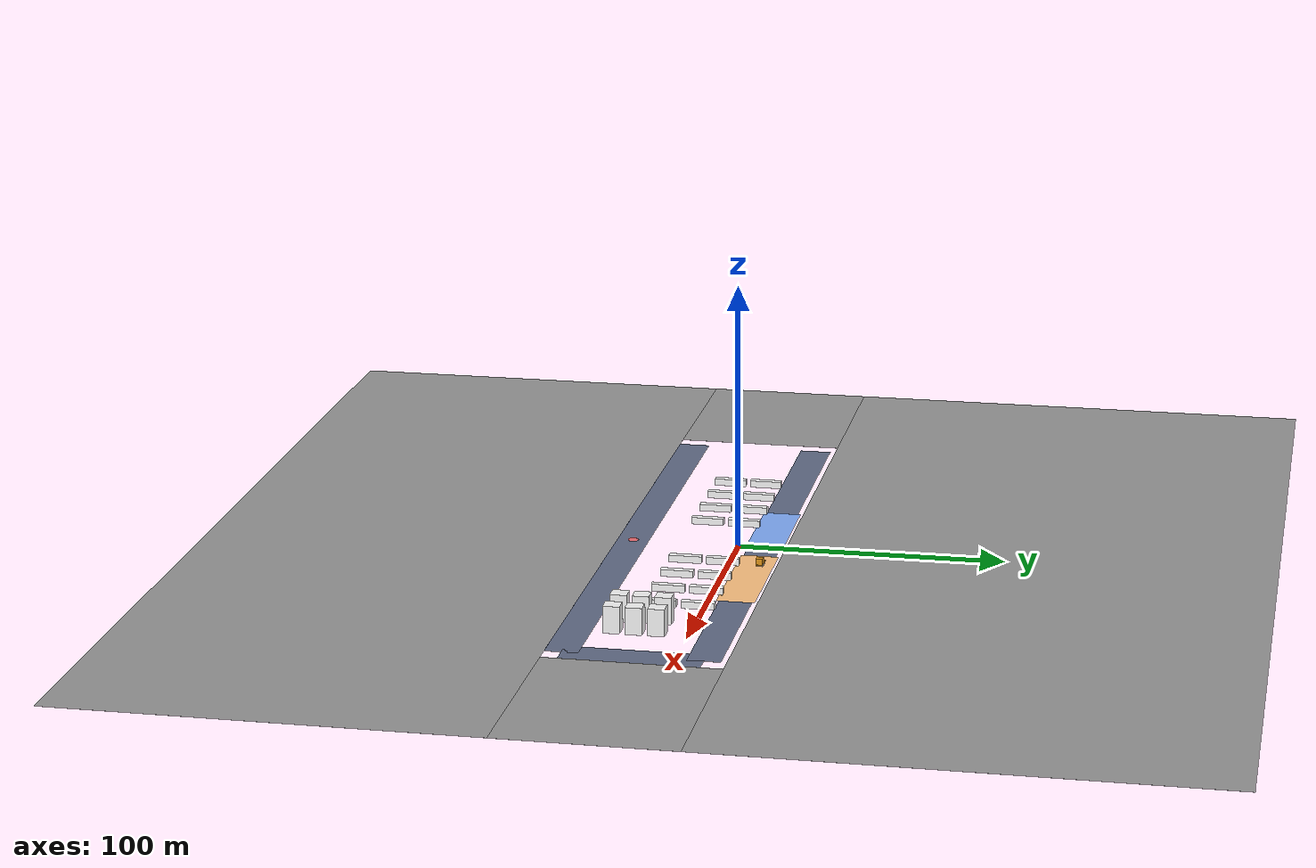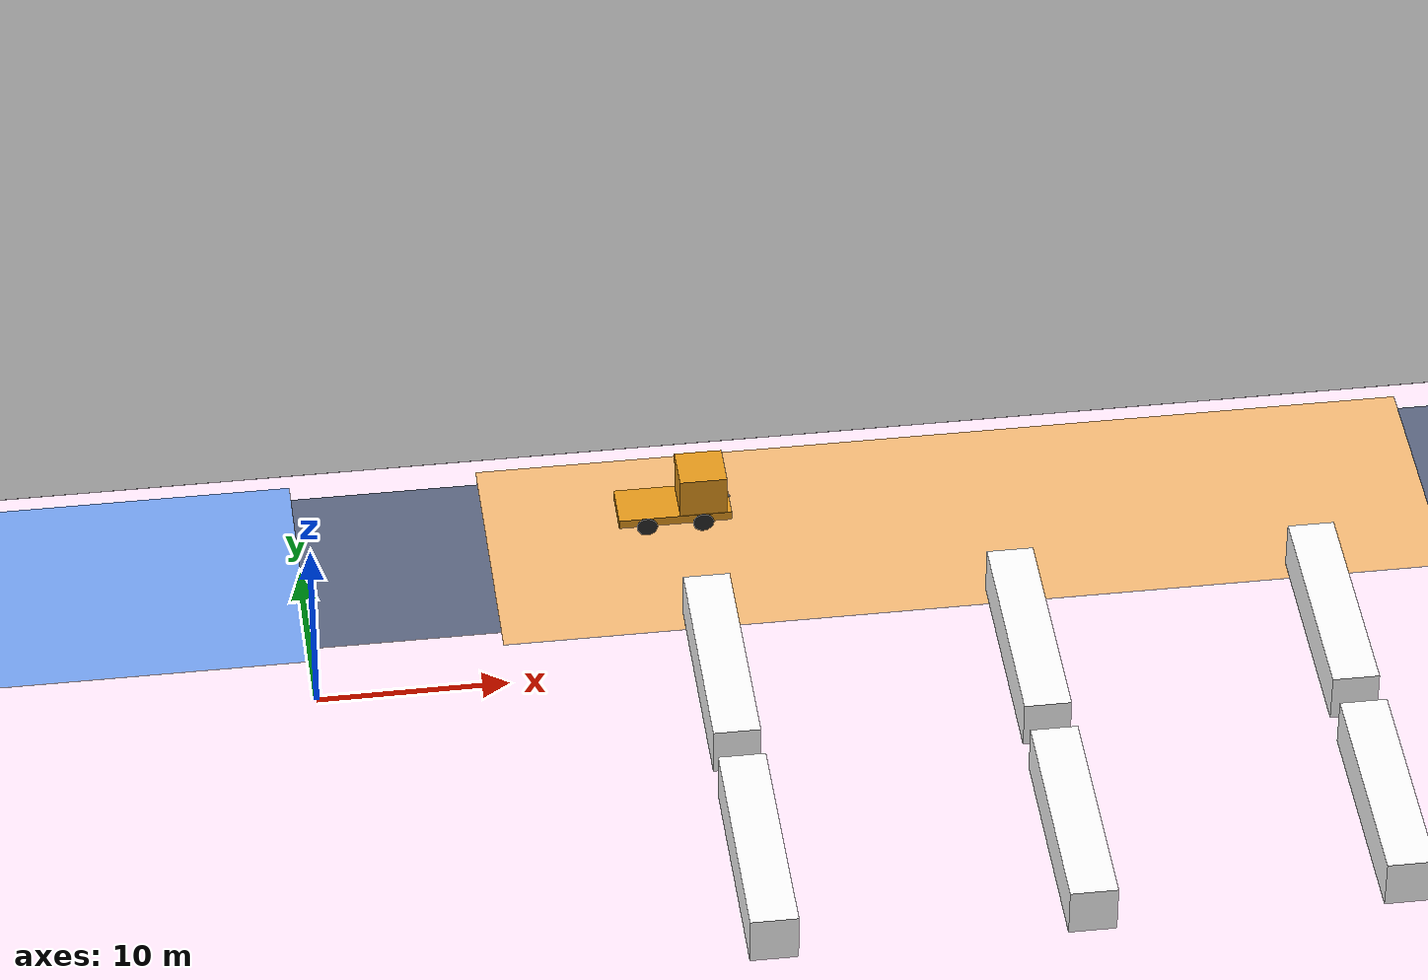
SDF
<sdf version="1.8">
 <world name="demo">
  <physics name="default_physics" type="ode">
   <max_step_size>0.001</max_step_size>
   <real_time_update_rate>1000</real_time_update_rate>
   <ode>
    <solver><type>quick</type><iters>50</iters><sor>1.3</sor></solver>
    <constraints>
     <cfm>0.0</cfm>
     <erp>0.2</erp>
     <contact_max_correcting_vel>10.0</contact_max_correcting_vel>
     <contact_surface_layer>0.001</contact_surface_layer>
    </constraints>
   </ode>
  </physics>
  <plugin filename="ignition-gazebo-physics-system" name="ignition::gazebo::systems::Physics"/>
  <plugin filename="ignition-gazebo-sensors-system" name="ignition::gazebo::systems::Sensors">
   <render_engine>ogre2</render_engine>
  </plugin>
  <plugin filename="ignition-gazebo-scene-broadcaster-system" name="ignition::gazebo::systems::SceneBroadcaster"/>
  <plugin filename="ignition-gazebo-user-commands-system" name="ignition::gazebo::systems::UserCommands"/>
  <light name="sun" type="directional">
   <pose>0 0 10 0 0 0</pose>
   <diffuse>0.8 0.8 0.8 1</diffuse>
   <specular>0.2 0.2 0.2 1</specular>
   <attenuation>
    <range>1000</range>
    <constant>0.9</constant>
    <linear>0.01</linear>
    <quadratic>0.001</quadratic>
   </attenuation>
   <direction>-0.5 0.1 -0.9</direction>
  </light>
  <model name="ground_plane">
   <static>true</static>
   <link name="link">
    <collision name="top_strip_collision">
     <pose>0 109 -0.1 0 0 0</pose>
     <geometry><box><size>400 182 0.2</size></box></geometry>
     <surface>
      <friction><ode><mu>1.0</mu><mu2>1.0</mu2></ode></friction>
      <contact><ode><kp>1e6</kp><kd>100</kd><max_vel>0.1</max_vel><min_depth>0.001</min_depth></ode></contact>
     </surface>
    </collision>
    <collision name="bottom_strip_collision">
     <pose>0 -123 -0.1 0 0 0</pose>
     <geometry><box><size>400 154 0.2</size></box></geometry>
     <surface>
      <friction><ode><mu>1.0</mu><mu2>1.0</mu2></ode></friction>
      <contact><ode><kp>1e6</kp><kd>100</kd><max_vel>0.1</max_vel><min_depth>0.001</min_depth></ode></contact>
     </surface>
    </collision>
    <collision name="left_strip_collision">
     <pose>-163 -14 -0.1 0 0 0</pose>
     <geometry><box><size>74 64 0.2</size></box></geometry>
     <surface>
      <friction><ode><mu>1.0</mu><mu2>1.0</mu2></ode></friction>
      <contact><ode><kp>1e6</kp><kd>100</kd><max_vel>0.1</max_vel><min_depth>0.001</min_depth></ode></contact>
     </surface>
    </collision>
    <collision name="right_strip_collision">
     <pose>163 -14 -0.1 0 0 0</pose>
     <geometry><box><size>74 64 0.2</size></box></geometry>
     <surface>
      <friction><ode><mu>1.0</mu><mu2>1.0</mu2></ode></friction>
      <contact><ode><kp>1e6</kp><kd>100</kd><max_vel>0.1</max_vel><min_depth>0.001</min_depth></ode></contact>
     </surface>
    </collision>
    <visual name="top_strip_visual">
     <pose>0 109 0 0 0 0</pose>
     <geometry><box><size>400 182 0.01</size></box></geometry>
     <material>
      <ambient>0.50 0.50 0.50 1</ambient>
      <diffuse>0.60 0.60 0.60 1</diffuse>
      <specular>0.40 0.40 0.40 1</specular>
     </material>
    </visual>
    <visual name="bottom_strip_visual">
     <pose>0 -123 0 0 0 0</pose>
     <geometry><box><size>400 154 0.01</size></box></geometry>
     <material>
      <ambient>0.50 0.50 0.50 1</ambient>
      <diffuse>0.60 0.60 0.60 1</diffuse>
      <specular>0.40 0.40 0.40 1</specular>
     </material>
    </visual>
    <visual name="left_strip_visual">
     <pose>-163 -14 0 0 0 0</pose>
     <geometry><box><size>74 64 0.01</size></box></geometry>
     <material>
      <ambient>0.50 0.50 0.50 1</ambient>
      <diffuse>0.60 0.60 0.60 1</diffuse>
      <specular>0.40 0.40 0.40 1</specular>
     </material>
    </visual>
    <visual name="right_strip_visual">
     <pose>163 -14 0 0 0 0</pose>
     <geometry><box><size>74 64 0.01</size></box></geometry>
     <material>
      <ambient>0.50 0.50 0.50 1</ambient>
      <diffuse>0.60 0.60 0.60 1</diffuse>
      <specular>0.40 0.40 0.40 1</specular>
     </material>
    </visual>
   </link>
  </model>
  <model name="main_test_corridor_overlay">
   <static>true</static>
   <link name="link">
    <visual name="visual">
     <pose>0 10 0.005 0 0 0</pose>
     <geometry><box><size>240 12 0.01</size></box></geometry>
     <material><ambient>0.10 0.18 0.26 0.70</ambient><diffuse>0.12 0.22 0.34 0.70</diffuse></material>
    </visual>
   </link>
  </model>
  <model name="secondary_test_corridor_overlay">
   <static>true</static>
   <link name="link">
    <visual name="visual">
     <pose>0 -40 0.005 0 0 0</pose>
     <geometry><box><size>240 12 0.01</size></box></geometry>
     <material><ambient>0.10 0.18 0.26 0.70</ambient><diffuse>0.12 0.22 0.34 0.70</diffuse></material>
    </visual>
   </link>
  </model>
  <model name="connector_test_corridor_overlay">
   <static>true</static>
   <link name="link">
    <visual name="vertical_leg">
     <pose>120 -15 0.005 0 0 0</pose>
     <geometry><box><size>12 50 0.01</size></box></geometry>
     <material><ambient>0.10 0.18 0.26 0.70</ambient><diffuse>0.12 0.22 0.34 0.70</diffuse></material>
    </visual>
   </link>
  </model>
  <model name="zone_a_uniform_settlement_marker">
   <static>true</static>
   <link name="link">
    <visual name="visual">
     <pose>-20 10 0.01 0 0 0</pose>
     <geometry><box><size>40 14 0.02</size></box></geometry>
     <material><ambient>0.00 0.35 0.85 0.55</ambient><diffuse>0.05 0.45 0.95 0.55</diffuse></material>
    </visual>
   </link>
  </model>
  <model name="zone_b_differential_slope_marker">
   <static>true</static>
   <link name="link">
    <visual name="visual">
     <pose>35 10 0.01 0 0 0</pose>
     <geometry><box><size>50 14 0.02</size></box></geometry>
     <material><ambient>0.95 0.55 0.05 0.55</ambient><diffuse>0.98 0.62 0.08 0.55</diffuse></material>
    </visual>
   </link>
  </model>
  <model name="zone_c_local_trap_marker">
   <static>true</static>
   <link name="link">
    <visual name="visual">
     <pose>0 -40 0.015 0 0 0</pose>
     <geometry><cylinder><radius>2</radius><length>0.03</length></cylinder></geometry>
     <material><ambient>0.80 0.10 0.10 0.65</ambient><diffuse>0.90 0.15 0.15 0.65</diffuse></material>
    </visual>
   </link>
  </model>
  <model name="agv_ackermann">
   <pose>20 12 0.58 0 0 0</pose>
   <include merge="true"><uri>package://ros_gz_example_description/models/agv_ackermann</uri></include>
   <plugin filename="ignition-gazebo-joint-state-publisher-system" name="ignition::gazebo::systems::JointStatePublisher"/>
   <plugin filename="ignition-gazebo-pose-publisher-system" name="ignition::gazebo::systems::PosePublisher">
    <publish_link_pose>true</publish_link_pose>
    <use_pose_vector_msg>true</use_pose_vector_msg>
    <static_publisher>true</static_publisher>
    <static_update_frequency>10</static_update_frequency>
   </plugin>
  </model>
  <model name="yard_blocks_group">
   <static>true</static>
   <link name="link">
    <visual name="b1_upper_visual">
     <pose>-71.214 -1.908 1.296 0 0 1.57</pose>
     <geometry><box><size>12.201 2.439 2.591</size></box></geometry>
     <material>
      <ambient>0.80 0.80 0.80 1</ambient>
      <diffuse>1.00 1.00 1.00 1</diffuse>
      <specular>0.12 0.12 0.12 1</specular>
      <pbr>
       <metal>
        <albedo_map>model://container-multi-stack/containerstack1/F.ST._txt_Metall_container_1.jpg</albedo_map>
        <roughness>0.82</roughness>
        <metalness>0.12</metalness>
       </metal>
      </pbr>
     </material>
    </visual>
    <collision name="b1_upper_collision">
     <pose>-71.214 -1.908 1.296 0 0 1.57</pose>
     <geometry><box><size>12.201 2.439 2.591</size></box></geometry>
    </collision>
    <visual name="b1_lower_visual">
     <pose>-71.214 -15.908 1.296 0 0 1.57</pose>
     <geometry><box><size>12.201 2.439 2.591</size></box></geometry>
     <material>
      <ambient>0.84 0.84 0.84 1</ambient>
      <diffuse>1.00 1.00 1.00 1</diffuse>
      <specular>0.12 0.12 0.12 1</specular>
      <pbr>
       <metal>
        <albedo_map>model://container-multi-stack/containerstack1/F.ST._txt_Metall_container_1.1.jpg</albedo_map>
        <roughness>0.80</roughness>
        <metalness>0.12</metalness>
       </metal>
      </pbr>
     </material>
    </visual>
    <collision name="b1_lower_collision">
     <pose>-71.214 -15.908 1.296 0 0 1.57</pose>
     <geometry><box><size>12.201 2.439 2.591</size></box></geometry>
    </collision>
    <visual name="b2_upper_visual">
     <pose>-55.214 -1.908 1.296 0 0 1.57</pose>
     <geometry><box><size>12.201 2.439 2.591</size></box></geometry>
     <material>
      <ambient>0.76 0.76 0.76 1</ambient>
      <diffuse>1.00 1.00 1.00 1</diffuse>
      <specular>0.10 0.10 0.10 1</specular>
      <pbr>
       <metal>
        <albedo_map>model://container-multi-stack/containerstack1/F.ST._txt_Metall_container_1.1.jpg</albedo_map>
        <roughness>0.84</roughness>
        <metalness>0.10</metalness>
       </metal>
      </pbr>
     </material>
    </visual>
    <collision name="b2_upper_collision">
     <pose>-55.214 -1.908 1.296 0 0 1.57</pose>
     <geometry><box><size>12.201 2.439 2.591</size></box></geometry>
    </collision>
    <visual name="b2_lower_visual">
     <pose>-55.214 -15.908 1.296 0 0 1.57</pose>
     <geometry><box><size>12.201 2.439 2.591</size></box></geometry>
     <material>
      <ambient>0.68 0.68 0.68 1</ambient>
      <diffuse>1.00 1.00 1.00 1</diffuse>
      <specular>0.10 0.10 0.10 1</specular>
      <pbr>
       <metal>
        <albedo_map>model://container-multi-stack/containerstack1/F.ST._txt_Metall_container_1.1.jpg</albedo_map>
        <roughness>0.88</roughness>
        <metalness>0.10</metalness>
       </metal>
      </pbr>
     </material>
    </visual>
    <collision name="b2_lower_collision">
     <pose>-55.214 -15.908 1.296 0 0 1.57</pose>
     <geometry><box><size>12.201 2.439 2.591</size></box></geometry>
    </collision>
    <visual name="b3_upper_visual">
     <pose>-39.214 -1.908 1.296 0 0 1.57</pose>
     <geometry><box><size>12.201 2.439 2.591</size></box></geometry>
     <material>
      <ambient>0.78 0.78 0.78 1</ambient>
      <diffuse>1.00 1.00 1.00 1</diffuse>
      <specular>0.11 0.11 0.11 1</specular>
      <pbr>
       <metal>
        <albedo_map>model://container-multi-stack/containerstack1/F.ST._txt_Metall_container_1.jpg</albedo_map>
        <roughness>0.80</roughness>
        <metalness>0.12</metalness>
       </metal>
      </pbr>
     </material>
    </visual>
    <collision name="b3_upper_collision">
     <pose>-39.214 -1.908 1.296 0 0 1.57</pose>
     <geometry><box><size>12.201 2.439 2.591</size></box></geometry>
    </collision>
    <visual name="b3_lower_visual">
     <pose>-39.214 -15.908 1.296 0 0 1.57</pose>
     <geometry><box><size>12.201 2.439 2.591</size></box></geometry>
     <material>
      <ambient>0.66 0.66 0.66 1</ambient>
      <diffuse>1.00 1.00 1.00 1</diffuse>
      <specular>0.10 0.10 0.10 1</specular>
      <pbr>
       <metal>
        <albedo_map>model://container-multi-stack/containerstack1/F.ST._txt_Metall_container_1.jpg</albedo_map>
        <roughness>0.88</roughness>
        <metalness>0.10</metalness>
       </metal>
      </pbr>
     </material>
    </visual>
    <collision name="b3_lower_collision">
     <pose>-39.214 -15.908 1.296 0 0 1.57</pose>
     <geometry><box><size>12.201 2.439 2.591</size></box></geometry>
    </collision>
    <visual name="b4_upper_visual">
     <pose>-23.214 -1.908 1.296 0 0 1.57</pose>
     <geometry><box><size>12.201 2.439 2.591</size></box></geometry>
     <material>
      <ambient>0.82 0.82 0.82 1</ambient>
      <diffuse>1.00 1.00 1.00 1</diffuse>
      <specular>0.12 0.12 0.12 1</specular>
      <pbr>
       <metal>
        <albedo_map>model://container-multi-stack/containerstack1/F.ST._txt_Metall_container_1.jpg</albedo_map>
        <roughness>0.82</roughness>
        <metalness>0.12</metalness>
       </metal>
      </pbr>
     </material>
    </visual>
    <collision name="b4_upper_collision">
     <pose>-23.214 -1.908 1.296 0 0 1.57</pose>
     <geometry><box><size>12.201 2.439 2.591</size></box></geometry>
    </collision>
    <visual name="b4_lower_visual">
     <pose>-23.214 -15.908 1.296 0 0 1.57</pose>
     <geometry><box><size>12.201 2.439 2.591</size></box></geometry>
     <material>
      <ambient>0.80 0.80 0.80 1</ambient>
      <diffuse>1.00 1.00 1.00 1</diffuse>
      <specular>0.12 0.12 0.12 1</specular>
      <pbr>
       <metal>
        <albedo_map>model://container-multi-stack/containerstack1/F.ST._txt_Metall_container_1.1.jpg</albedo_map>
        <roughness>0.82</roughness>
        <metalness>0.12</metalness>
       </metal>
      </pbr>
     </material>
    </visual>
    <collision name="b4_lower_collision">
     <pose>-23.214 -15.908 1.296 0 0 1.57</pose>
     <geometry><box><size>12.201 2.439 2.591</size></box></geometry>
    </collision>
    <visual name="b5_upper_visual">
     <pose>20.786 -1.908 1.296 0 0 1.57</pose>
     <geometry><box><size>12.201 2.439 2.591</size></box></geometry>
     <material>
      <ambient>0.74 0.74 0.74 1</ambient>
      <diffuse>1.00 1.00 1.00 1</diffuse>
      <specular>0.10 0.10 0.10 1</specular>
      <pbr>
       <metal>
        <albedo_map>model://container-multi-stack/containerstack1/F.ST._txt_Metall_container_1.1.jpg</albedo_map>
        <roughness>0.84</roughness>
        <metalness>0.10</metalness>
       </metal>
      </pbr>
     </material>
    </visual>
    <collision name="b5_upper_collision">
     <pose>20.786 -1.908 1.296 0 0 1.57</pose>
     <geometry><box><size>12.201 2.439 2.591</size></box></geometry>
    </collision>
    <visual name="b5_lower_visual">
     <pose>20.786 -15.908 1.296 0 0 1.57</pose>
     <geometry><box><size>12.201 2.439 2.591</size></box></geometry>
     <material>
      <ambient>0.70 0.70 0.70 1</ambient>
      <diffuse>1.00 1.00 1.00 1</diffuse>
      <specular>0.10 0.10 0.10 1</specular>
      <pbr>
       <metal>
        <albedo_map>model://container-multi-stack/containerstack1/F.ST._txt_Metall_container_1.1.jpg</albedo_map>
        <roughness>0.88</roughness>
        <metalness>0.10</metalness>
       </metal>
      </pbr>
     </material>
    </visual>
    <collision name="b5_lower_collision">
     <pose>20.786 -15.908 1.296 0 0 1.57</pose>
     <geometry><box><size>12.201 2.439 2.591</size></box></geometry>
    </collision>
    <visual name="b6_upper_visual">
     <pose>36.786 -1.908 1.296 0 0 1.57</pose>
     <geometry><box><size>12.201 2.439 2.591</size></box></geometry>
     <material>
      <ambient>0.78 0.78 0.78 1</ambient>
      <diffuse>1.00 1.00 1.00 1</diffuse>
      <specular>0.11 0.11 0.11 1</specular>
      <pbr>
       <metal>
        <albedo_map>model://container-multi-stack/containerstack1/F.ST._txt_Metall_container_1.jpg</albedo_map>
        <roughness>0.80</roughness>
        <metalness>0.12</metalness>
       </metal>
      </pbr>
     </material>
    </visual>
    <collision name="b6_upper_collision">
     <pose>36.786 -1.908 1.296 0 0 1.57</pose>
     <geometry><box><size>12.201 2.439 2.591</size></box></geometry>
    </collision>
    <visual name="b6_lower_visual">
     <pose>36.786 -15.908 1.296 0 0 1.57</pose>
     <geometry><box><size>12.201 2.439 2.591</size></box></geometry>
     <material>
      <ambient>0.66 0.66 0.66 1</ambient>
      <diffuse>1.00 1.00 1.00 1</diffuse>
      <specular>0.10 0.10 0.10 1</specular>
      <pbr>
       <metal>
        <albedo_map>model://container-multi-stack/containerstack1/F.ST._txt_Metall_container_1.jpg</albedo_map>
        <roughness>0.88</roughness>
        <metalness>0.10</metalness>
       </metal>
      </pbr>
     </material>
    </visual>
    <collision name="b6_lower_collision">
     <pose>36.786 -15.908 1.296 0 0 1.57</pose>
     <geometry><box><size>12.201 2.439 2.591</size></box></geometry>
    </collision>
    <visual name="b7_upper_visual">
     <pose>52.786 -1.908 1.296 0 0 1.57</pose>
     <geometry><box><size>12.201 2.439 2.591</size></box></geometry>
     <material>
      <ambient>0.82 0.82 0.82 1</ambient>
      <diffuse>1.00 1.00 1.00 1</diffuse>
      <specular>0.12 0.12 0.12 1</specular>
      <pbr>
       <metal>
        <albedo_map>model://container-multi-stack/containerstack1/F.ST._txt_Metall_container_1.jpg</albedo_map>
        <roughness>0.82</roughness>
        <metalness>0.12</metalness>
       </metal>
      </pbr>
     </material>
    </visual>
    <collision name="b7_upper_collision">
     <pose>52.786 -1.908 1.296 0 0 1.57</pose>
     <geometry><box><size>12.201 2.439 2.591</size></box></geometry>
    </collision>
    <visual name="b7_lower_visual">
     <pose>52.786 -15.908 1.296 0 0 1.57</pose>
     <geometry><box><size>12.201 2.439 2.591</size></box></geometry>
     <material>
      <ambient>0.80 0.80 0.80 1</ambient>
      <diffuse>1.00 1.00 1.00 1</diffuse>
      <specular>0.12 0.12 0.12 1</specular>
      <pbr>
       <metal>
        <albedo_map>model://container-multi-stack/containerstack1/F.ST._txt_Metall_container_1.1.jpg</albedo_map>
        <roughness>0.82</roughness>
        <metalness>0.12</metalness>
       </metal>
      </pbr>
     </material>
    </visual>
    <collision name="b7_lower_collision">
     <pose>52.786 -15.908 1.296 0 0 1.57</pose>
     <geometry><box><size>12.201 2.439 2.591</size></box></geometry>
    </collision>
    <visual name="b8_upper_visual">
     <pose>68.786 -1.908 1.296 0 0 1.57</pose>
     <geometry><box><size>12.201 2.439 2.591</size></box></geometry>
     <material>
      <ambient>0.76 0.76 0.76 1</ambient>
      <diffuse>1.00 1.00 1.00 1</diffuse>
      <specular>0.10 0.10 0.10 1</specular>
      <pbr>
       <metal>
        <albedo_map>model://container-multi-stack/containerstack1/F.ST._txt_Metall_container_1.1.jpg</albedo_map>
        <roughness>0.84</roughness>
        <metalness>0.10</metalness>
       </metal>
      </pbr>
     </material>
    </visual>
    <collision name="b8_upper_collision">
     <pose>68.786 -1.908 1.296 0 0 1.57</pose>
     <geometry><box><size>12.201 2.439 2.591</size></box></geometry>
    </collision>
    <visual name="b8_lower_visual">
     <pose>68.786 -15.908 1.296 0 0 1.57</pose>
     <geometry><box><size>12.201 2.439 2.591</size></box></geometry>
     <material>
      <ambient>0.68 0.68 0.68 1</ambient>
      <diffuse>1.00 1.00 1.00 1</diffuse>
      <specular>0.10 0.10 0.10 1</specular>
      <pbr>
       <metal>
        <albedo_map>model://container-multi-stack/containerstack1/F.ST._txt_Metall_container_1.1.jpg</albedo_map>
        <roughness>0.88</roughness>
        <metalness>0.10</metalness>
       </metal>
      </pbr>
     </material>
    </visual>
    <collision name="b8_lower_collision">
     <pose>68.786 -15.908 1.296 0 0 1.57</pose>
     <geometry><box><size>12.201 2.439 2.591</size></box></geometry>
    </collision>
   </link>
  </model>
  <model name="stack_core_group">
   <static>true</static>
   <link name="link">
    <visual name="s1_visual">
     <pose>84.710 -26.890 5.000 0 0 0</pose>
     <geometry><box><size>5.420 6.000 10.000</size></box></geometry>
     <material>
      <ambient>0.62 0.62 0.62 1</ambient>
      <diffuse>1.00 1.00 1.00 1</diffuse>
      <specular>0.08 0.08 0.08 1</specular>
      <pbr>
       <metal>
        <albedo_map>model://container-multi-stack/containerstack1/F.ST._txt_Metall_container_1.jpg</albedo_map>
        <roughness>0.90</roughness>
        <metalness>0.10</metalness>
       </metal>
      </pbr>
     </material>
    </visual>
    <collision name="s1_collision">
     <pose>84.710 -26.890 5.000 0 0 0</pose>
     <geometry><box><size>5.420 6.000 10.000</size></box></geometry>
     <surface>
      <friction><ode><mu>1.0</mu><mu2>1.0</mu2></ode></friction>
      <contact><ode><kp>1e7</kp><kd>100</kd><max_vel>0.01</max_vel><min_depth>0.001</min_depth></ode></contact>
     </surface>
    </collision>
    <visual name="s2_visual">
     <pose>84.710 -18.890 5.000 0 0 0</pose>
     <geometry><box><size>5.420 6.000 10.000</size></box></geometry>
     <material>
      <ambient>0.66 0.66 0.66 1</ambient>
      <diffuse>1.00 1.00 1.00 1</diffuse>
      <specular>0.08 0.08 0.08 1</specular>
      <pbr>
       <metal>
        <albedo_map>model://container-multi-stack/containerstack1/F.ST._txt_Metall_container_1.1.jpg</albedo_map>
        <roughness>0.88</roughness>
        <metalness>0.10</metalness>
       </metal>
      </pbr>
     </material>
    </visual>
    <collision name="s2_collision">
     <pose>84.710 -18.890 5.000 0 0 0</pose>
     <geometry><box><size>5.420 6.000 10.000</size></box></geometry>
     <surface>
      <friction><ode><mu>1.0</mu><mu2>1.0</mu2></ode></friction>
      <contact><ode><kp>1e7</kp><kd>100</kd><max_vel>0.01</max_vel><min_depth>0.001</min_depth></ode></contact>
     </surface>
    </collision>
    <visual name="s3_visual">
     <pose>84.710 -10.890 5.000 0 0 0</pose>
     <geometry><box><size>5.420 6.000 10.000</size></box></geometry>
     <material>
      <ambient>0.58 0.58 0.58 1</ambient>
      <diffuse>1.00 1.00 1.00 1</diffuse>
      <specular>0.08 0.08 0.08 1</specular>
      <pbr>
       <metal>
        <albedo_map>model://container-multi-stack/containerstack1/F.ST._txt_Metall_container_1.jpg</albedo_map>
        <roughness>0.92</roughness>
        <metalness>0.10</metalness>
       </metal>
      </pbr>
     </material>
    </visual>
    <collision name="s3_collision">
     <pose>84.710 -10.890 5.000 0 0 0</pose>
     <geometry><box><size>5.420 6.000 10.000</size></box></geometry>
     <surface>
      <friction><ode><mu>1.0</mu><mu2>1.0</mu2></ode></friction>
      <contact><ode><kp>1e7</kp><kd>100</kd><max_vel>0.01</max_vel><min_depth>0.001</min_depth></ode></contact>
     </surface>
    </collision>
    <visual name="s4_visual">
     <pose>96.710 -26.890 5.000 0 0 0</pose>
     <geometry><box><size>5.420 6.000 10.000</size></box></geometry>
     <material>
      <ambient>0.64 0.64 0.64 1</ambient>
      <diffuse>1.00 1.00 1.00 1</diffuse>
      <specular>0.08 0.08 0.08 1</specular>
      <pbr>
       <metal>
        <albedo_map>model://container-multi-stack/containerstack1/F.ST._txt_Metall_container_1.jpg</albedo_map>
        <roughness>0.88</roughness>
        <metalness>0.10</metalness>
       </metal>
      </pbr>
     </material>
    </visual>
    <collision name="s4_collision">
     <pose>96.710 -26.890 5.000 0 0 0</pose>
     <geometry><box><size>5.420 6.000 10.000</size></box></geometry>
     <surface>
      <friction><ode><mu>1.0</mu><mu2>1.0</mu2></ode></friction>
      <contact><ode><kp>1e7</kp><kd>100</kd><max_vel>0.01</max_vel><min_depth>0.001</min_depth></ode></contact>
     </surface>
    </collision>
    <visual name="s5_visual">
     <pose>96.710 -18.890 5.000 0 0 0</pose>
     <geometry><box><size>5.420 6.000 10.000</size></box></geometry>
     <material>
      <ambient>0.60 0.60 0.60 1</ambient>
      <diffuse>1.00 1.00 1.00 1</diffuse>
      <specular>0.08 0.08 0.08 1</specular>
      <pbr>
       <metal>
        <albedo_map>model://container-multi-stack/containerstack1/F.ST._txt_Metall_container_1.1.jpg</albedo_map>
        <roughness>0.92</roughness>
        <metalness>0.10</metalness>
       </metal>
      </pbr>
     </material>
    </visual>
    <collision name="s5_collision">
     <pose>96.710 -18.890 5.000 0 0 0</pose>
     <geometry><box><size>5.420 6.000 10.000</size></box></geometry>
     <surface>
      <friction><ode><mu>1.0</mu><mu2>1.0</mu2></ode></friction>
      <contact><ode><kp>1e7</kp><kd>100</kd><max_vel>0.01</max_vel><min_depth>0.001</min_depth></ode></contact>
     </surface>
    </collision>
    <visual name="s6_visual">
     <pose>96.710 -10.890 5.000 0 0 0</pose>
     <geometry><box><size>5.420 6.000 10.000</size></box></geometry>
     <material>
      <ambient>0.64 0.64 0.64 1</ambient>
      <diffuse>1.00 1.00 1.00 1</diffuse>
      <specular>0.08 0.08 0.08 1</specular>
      <pbr>
       <metal>
        <albedo_map>model://container-multi-stack/containerstack1/F.ST._txt_Metall_container_1.1.jpg</albedo_map>
        <roughness>0.88</roughness>
        <metalness>0.10</metalness>
       </metal>
      </pbr>
     </material>
    </visual>
    <collision name="s6_collision">
     <pose>96.710 -10.890 5.000 0 0 0</pose>
     <geometry><box><size>5.420 6.000 10.000</size></box></geometry>
     <surface>
      <friction><ode><mu>1.0</mu><mu2>1.0</mu2></ode></friction>
      <contact><ode><kp>1e7</kp><kd>100</kd><max_vel>0.01</max_vel><min_depth>0.001</min_depth></ode></contact>
     </surface>
    </collision>
   </link>
  </model>
 </world>
</sdf>

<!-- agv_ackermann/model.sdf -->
<sdf version="1.8">
  <model name="agv_ackermann">
    <!--
      self_collide=false: chassis and wheel links share overlapping geometry.
      This is intentional (simplified model) — disable to avoid internal forces.
    -->
    <self_collide>false</self_collide>

    <link name="chassis">
      <!-- Center the chassis body over the wheelbase midpoint, at height z=0.8 -->
      <pose>0 0 0.85 0 0 0</pose>
      <inertial>
        <!-- 8000 kg for frame, 2000 kg for cab — combined CoM estimate -->
        <mass>10000</mass>
        <inertia>
          <!-- Body frame approx (5×2.5×0.5) + cab (2.5×2.5×2.5) combined rough estimate -->
          <ixx>4500</ixx>
          <ixy>0</ixy>
          <ixz>0</ixz>
          <iyy>20000</iyy>
          <iyz>0</iyz>
          <izz>23000</izz>
        </inertia>
      </inertial>

      <visual name="visual_body_frame">
        <pose>0 0 -0.55 0 0 0</pose>
        <geometry>
          <box><size>6.0 2.5 0.5</size></box>
        </geometry>
        <material>
          <!-- Yellow-orange: standard port AGV color -->
          <ambient>0.8 0.5 0.1 1</ambient>
          <diffuse>0.9 0.6 0.1 1</diffuse>
          <specular>0.3 0.2 0.0 1</specular>
        </material>
      </visual>

      <visual name="visual_cab">
        <pose>1.5 0 0.7 0 0 0</pose>
        <geometry>
          <box><size>2.5 2.4 2.5</size></box>
        </geometry>
        <material>
          <ambient>0.8 0.5 0.1 1</ambient>
          <diffuse>0.9 0.6 0.1 1</diffuse>
          <specular>0.3 0.2 0.0 1</specular>
        </material>
      </visual>

      <!--
        Collision 1: Body frame (same as visual_body_frame)
        Using simplified box — no mesh needed.
      -->
      <collision name="collision_body_frame">
        <pose>0 0 -0.55 0 0 0</pose>
        <geometry>
          <box><size>6.0 2.5 0.5</size></box>
        </geometry>
        <surface>
          <friction>
            <ode>
              <mu>1.0</mu>
              <mu2>1.0</mu2>
            </ode>
          </friction>
          <contact>
            <ode>
              <kp>1e7</kp>
              <kd>1e3</kd>
              <max_vel>0.1</max_vel>
              <min_depth>0.002</min_depth>
            </ode>
          </contact>
        </surface>
      </collision>

      <!--
        Collision 2: Cab (same as visual_cab)
      -->
      <collision name="collision_cab">
        <pose>1.5 0 0.7 0 0 0</pose>
        <geometry>
          <box><size>2.5 2.4 2.5</size></box>
        </geometry>
        <surface>
          <friction>
            <ode>
              <mu>1.0</mu>
              <mu2>1.0</mu2>
            </ode>
          </friction>
          <contact>
            <ode>
              <kp>1e7</kp>
              <kd>1e3</kd>
              <max_vel>0.1</max_vel>
              <min_depth>0.002</min_depth>
            </ode>
          </contact>
        </surface>
      </collision>

      <!--
        Collision 3: Front bumper guard.
        Bridges the small gap between the low body frame and tall cab so the
        front face remains a solid obstacle against static harbour assets.
      -->
      <collision name="collision_front_bumper">
        <pose>2.9 0 -0.15 0 0 0</pose>
        <geometry>
          <box><size>0.35 2.4 1.4</size></box>
        </geometry>
        <surface>
          <friction>
            <ode>
              <mu>1.0</mu>
              <mu2>1.0</mu2>
            </ode>
          </friction>
          <contact>
            <ode>
              <kp>1e7</kp>
              <kd>1e3</kd>
              <max_vel>0.1</max_vel>
              <min_depth>0.002</min_depth>
            </ode>
          </contact>
        </surface>
      </collision>
    </link>

    <link name="front_left_wheel_steering_link">
      <!-- Front axle x=1.5, left wheel y=0.9 (steering pivot, slightly inward from wheel center 1.1) -->
      <pose>1.5 0.9 0.05 0 0 0</pose>
      <inertial>
        <!-- Small mass for numerical stability, not physically significant -->
        <mass>1.0</mass>
        <inertia>
          <ixx>0.05</ixx>
          <ixy>0</ixy>
          <ixz>0</ixz>
          <iyy>0.05</iyy>
          <iyz>0</iyz>
          <izz>0.05</izz>
        </inertia>
      </inertial>
      <!-- Small visual cylinder to show steering pivot (optional debug aid) -->
      <visual name="visual_steering_pivot_fl">
        <geometry>
          <cylinder><radius>0.05</radius><length>0.12</length></cylinder>
        </geometry>
        <material><ambient>0.9 0.9 0.9 1</ambient><diffuse>0.9 0.9 0.9 1</diffuse></material>
      </visual>
    </link>

    <!-- ================================================================
         FRONT RIGHT WHEEL STEERING LINK
    -->
    <link name="front_right_wheel_steering_link">
      <!-- Front axle x=1.5, right wheel y=-0.9 -->
      <pose>1.5 -0.9 0.05 0 0 0</pose>
      <inertial>
        <mass>1.0</mass>
        <inertia>
          <ixx>0.05</ixx><ixy>0</ixy><ixz>0</ixz>
          <iyy>0.05</iyy><iyz>0</iyz><izz>0.05</izz>
        </inertia>
      </inertial>
      <visual name="visual_steering_pivot_fr">
        <geometry>
          <cylinder><radius>0.05</radius><length>0.12</length></cylinder>
        </geometry>
        <material><ambient>0.9 0.9 0.9 1</ambient><diffuse>0.9 0.9 0.9 1</diffuse></material>
      </visual>
    </link>

    <link name="front_left_wheel">
      <!-- pose: front axle x=1.5, left y=1.1, wheel center z=0, rotated for cylinder axis Y -->
      <pose>1.5 1.1 0 -1.5707 0 0</pose>
      <inertial>
        <mass>150</mass>
        <inertia>
          <ixx>12.9</ixx><ixy>0</ixy><ixz>0</ixz>
          <iyy>12.9</iyy><iyz>0</iyz><izz>22.7</izz>
        </inertia>
      </inertial>
      <visual name="visual_front_left_wheel">
        <geometry>
          <cylinder><radius>0.55</radius><length>0.35</length></cylinder>
        </geometry>
        <material>
          <ambient>0.15 0.15 0.15 1</ambient>
          <diffuse>0.15 0.15 0.15 1</diffuse>
          <specular>0.1 0.1 0.1 1</specular>
        </material>
      </visual>
      <collision name="collision_front_left_wheel">
        <geometry>
          <cylinder><radius>0.55</radius><length>0.35</length></cylinder>
        </geometry>
        <!--
          Friction: high mu (rubber on concrete), fdir1 along tire rolling direction.
          Following volvofh16/vehicle_blue pattern.
        -->
        <surface>
          <friction>
            <ode>
              <mu>1.0</mu>
              <mu2>0.5</mu2>
              <fdir1>0 0 1</fdir1>
              <slip1>0.0</slip1>
              <slip2>0.0</slip2>
            </ode>
          </friction>
          <contact>
            <ode>
              <kp>1e7</kp><kd>1e3</kd>
              <max_vel>1.0</max_vel><min_depth>0.003</min_depth>
            </ode>
          </contact>
        </surface>
      </collision>
    </link>

    <!-- ================================================================
         FRONT RIGHT WHEEL
    -->
    <link name="front_right_wheel">
      <pose>1.5 -1.1 0 -1.5707 0 0</pose>
      <inertial>
        <mass>150</mass>
        <inertia>
          <ixx>12.9</ixx><ixy>0</ixy><ixz>0</ixz>
          <iyy>12.9</iyy><iyz>0</iyz><izz>22.7</izz>
        </inertia>
      </inertial>
      <visual name="visual_front_right_wheel">
        <geometry>
          <cylinder><radius>0.55</radius><length>0.35</length></cylinder>
        </geometry>
        <material>
          <ambient>0.15 0.15 0.15 1</ambient>
          <diffuse>0.15 0.15 0.15 1</diffuse>
          <specular>0.1 0.1 0.1 1</specular>
        </material>
      </visual>
      <collision name="collision_front_right_wheel">
        <geometry>
          <cylinder><radius>0.55</radius><length>0.35</length></cylinder>
        </geometry>
        <surface>
          <friction>
            <ode>
              <mu>1.0</mu><mu2>0.5</mu2><fdir1>0 0 1</fdir1>
              <slip1>0.0</slip1><slip2>0.0</slip2>
            </ode>
          </friction>
          <contact>
            <ode>
              <kp>1e7</kp><kd>1e3</kd>
              <max_vel>1.0</max_vel><min_depth>0.003</min_depth>
            </ode>
          </contact>
        </surface>
      </collision>
    </link>

    <!-- ================================================================
         REAR LEFT WHEEL (drive wheel)
         Same geometry as front wheels.
    -->
    <link name="rear_left_wheel">
      <pose>-1.5 1.1 0 -1.5707 0 0</pose>
      <inertial>
        <mass>150</mass>
        <inertia>
          <ixx>12.9</ixx><ixy>0</ixy><ixz>0</ixz>
          <iyy>12.9</iyy><iyz>0</iyz><izz>22.7</izz>
        </inertia>
      </inertial>
      <visual name="visual_rear_left_wheel">
        <geometry>
          <cylinder><radius>0.55</radius><length>0.35</length></cylinder>
        </geometry>
        <material>
          <ambient>0.15 0.15 0.15 1</ambient>
          <diffuse>0.15 0.15 0.15 1</diffuse>
          <specular>0.1 0.1 0.1 1</specular>
        </material>
      </visual>
      <collision name="collision_rear_left_wheel">
        <geometry>
          <cylinder><radius>0.55</radius><length>0.35</length></cylinder>
        </geometry>
        <surface>
          <friction>
            <ode>
              <!-- Higher friction for rear drive wheels -->
              <mu>1.0</mu><mu2>1.0</mu2><fdir1>0 0 1</fdir1>
              <slip1>0.0</slip1><slip2>0.0</slip2>
            </ode>
          </friction>
          <contact>
            <ode>
              <kp>1e7</kp><kd>1e3</kd>
              <max_vel>1.0</max_vel><min_depth>0.003</min_depth>
            </ode>
          </contact>
        </surface>
      </collision>
    </link>

    <!-- ================================================================
         REAR RIGHT WHEEL (drive wheel)
    -->
    <link name="rear_right_wheel">
      <pose>-1.5 -1.1 0 -1.5707 0 0</pose>
      <inertial>
        <mass>150</mass>
        <inertia>
          <ixx>12.9</ixx><ixy>0</ixy><ixz>0</ixz>
          <iyy>12.9</iyy><iyz>0</iyz><izz>22.7</izz>
        </inertia>
      </inertial>
      <visual name="visual_rear_right_wheel">
        <geometry>
          <cylinder><radius>0.55</radius><length>0.35</length></cylinder>
        </geometry>
        <material>
          <ambient>0.15 0.15 0.15 1</ambient>
          <diffuse>0.15 0.15 0.15 1</diffuse>
          <specular>0.1 0.1 0.1 1</specular>
        </material>
      </visual>
      <collision name="collision_rear_right_wheel">
        <geometry>
          <cylinder><radius>0.55</radius><length>0.35</length></cylinder>
        </geometry>
        <surface>
          <friction>
            <ode>
              <mu>1.0</mu><mu2>1.0</mu2><fdir1>0 0 1</fdir1>
              <slip1>0.0</slip1><slip2>0.0</slip2>
            </ode>
          </friction>
          <contact>
            <ode>
              <kp>1e7</kp><kd>1e3</kd>
              <max_vel>1.0</max_vel><min_depth>0.003</min_depth>
            </ode>
          </contact>
        </surface>
      </collision>
    </link>

    <link name="lidar_link">
      <pose>3.0 0 0.6 0 0 0</pose>
      <inertial>
        <mass>0.1</mass>
        <inertia>
          <ixx>0.000166667</ixx>
          <iyy>0.000166667</iyy>
          <izz>0.000166667</izz>
        </inertia>
      </inertial>
      <collision name="collision">
        <geometry>
          <box><size>0.1 0.1 0.1</size></box>
        </geometry>
      </collision>
      <visual name="visual">
        <geometry>
          <box><size>0.1 0.1 0.1</size></box>
        </geometry>
      </visual>
      <sensor name='gpu_lidar' type='gpu_lidar'>
        <pose>0 0 0 0 0 0</pose>
        <topic>/model/agv_ackermann/scan</topic>
        <gz_frame_id>lidar_link</gz_frame_id>
        <update_rate>10</update_rate>
        <lidar>
          <scan>
            <horizontal>
              <samples>640</samples>
              <resolution>1</resolution>
              <min_angle>-1.396263</min_angle>
              <max_angle>1.396263</max_angle>
            </horizontal>
            <vertical>
              <samples>1</samples>
              <resolution>1</resolution>
              <min_angle>0.0</min_angle>
              <max_angle>0.0</max_angle>
            </vertical>
          </scan>
          <range>
            <min>0.08</min>
            <max>25.0</max>
            <resolution>0.01</resolution>
          </range>
        </lidar>
        <visualize>true</visualize>
      </sensor>
    </link>

    <joint name='lidar_joint' type='fixed'>
      <parent>chassis</parent>
      <child>lidar_link</child>
    </joint>

    <!-- ================================================================
         JOINTS
    -->

    <joint name="front_left_wheel_steering_joint" type="revolute">
      <parent>chassis</parent>
      <child>front_left_wheel_steering_link</child>
      <axis>
        <xyz>0 0 1</xyz>
        <limit>
          <lower>-0.6</lower>
          <upper>+0.6</upper>
          <velocity>1.0</velocity>
          <effort>5000</effort>
        </limit>
        <dynamics>
          <damping>10.0</damping>
          <friction>1.0</friction>
        </dynamics>
        <use_parent_model_frame>1</use_parent_model_frame>
      </axis>
    </joint>

    <!--
      Front right steering joint: revolute around Z.
      Connects chassis → front_right_wheel_steering_link.
    -->
    <joint name="front_right_wheel_steering_joint" type="revolute">
      <parent>chassis</parent>
      <child>front_right_wheel_steering_link</child>
      <axis>
        <xyz>0 0 1</xyz>
        <limit>
          <lower>-0.6</lower>
          <upper>+0.6</upper>
          <velocity>1.0</velocity>
          <effort>5000</effort>
        </limit>
        <dynamics>
          <damping>10.0</damping>
          <friction>1.0</friction>
        </dynamics>
      </axis>
    </joint>

    <joint name="front_left_wheel_joint" type="revolute">
      <parent>front_left_wheel_steering_link</parent>
      <child>front_left_wheel</child>
      <axis>
        <xyz>0 0 1</xyz>
        <limit>
          <lower>-1.79769e+308</lower>
          <upper>1.79769e+308</upper>
        </limit>
        <dynamics>
          <damping>2.0</damping>
          <friction>0.5</friction>
        </dynamics>
      </axis>
    </joint>

    <!-- Front right wheel joint -->
    <joint name="front_right_wheel_joint" type="revolute">
      <parent>front_right_wheel_steering_link</parent>
      <child>front_right_wheel</child>
      <axis>
        <xyz>0 0 1</xyz>
        <limit>
          <lower>-1.79769e+308</lower>
          <upper>1.79769e+308</upper>
        </limit>
        <dynamics>
          <damping>2.0</damping>
          <friction>0.5</friction>
        </dynamics>
      </axis>
    </joint>

    <!--
      Rear left wheel joint (DRIVE wheel): revolute, chassis → rear_left_wheel.
      AckermannSteering drives these via left_joint parameter.
    -->
    <joint name="rear_left_wheel_joint" type="revolute">
      <parent>chassis</parent>
      <child>rear_left_wheel</child>
      <axis>
        <xyz>0 0 1</xyz>
        <limit>
          <lower>-1.79769e+308</lower>
          <upper>1.79769e+308</upper>
        </limit>
        <dynamics>
          <damping>2.0</damping>
          <friction>0.5</friction>
        </dynamics>
      </axis>
    </joint>

    <!-- Rear right wheel joint (DRIVE wheel) -->
    <joint name="rear_right_wheel_joint" type="revolute">
      <parent>chassis</parent>
      <child>rear_right_wheel</child>
      <axis>
        <xyz>0 0 1</xyz>
        <limit>
          <lower>-1.79769e+308</lower>
          <upper>1.79769e+308</upper>
        </limit>
        <dynamics>
          <damping>2.0</damping>
          <friction>0.5</friction>
        </dynamics>
      </axis>
    </joint>

    <plugin
      filename="ignition-gazebo-ackermann-steering-system"
      name="gz::sim::systems::AckermannSteering">
      <!--
        left_joint / right_joint: specifies ALL drive wheels (front + rear).
        Following the official example pattern (both front and rear listed).
      -->
      <left_joint>front_left_wheel_joint</left_joint>
      <left_joint>rear_left_wheel_joint</left_joint>
      <right_joint>front_right_wheel_joint</right_joint>
      <right_joint>rear_right_wheel_joint</right_joint>

      <!-- Steering joints (revolute Z) -->
      <left_steering_joint>front_left_wheel_steering_joint</left_steering_joint>
      <right_steering_joint>front_right_wheel_steering_joint</right_steering_joint>

      <!--
        kingpin_width: lateral distance between left/right steering pivot joints.
        Steering link pivots are at y=±0.9, so kingpin_width = 1.8 m.
      -->
      <kingpin_width>1.8</kingpin_width>

      <!-- steering_limit: max steer angle (rad). 0.6 rad ≈ 34° for heavy truck. -->
      <steering_limit>0.6</steering_limit>

      <!-- wheel_base: front-to-rear axle distance = 3.0 m -->
      <wheel_base>3.0</wheel_base>

      <!-- wheel_separation: rear left-to-right wheel center distance = 2.2 m -->
      <wheel_separation>2.2</wheel_separation>

      <!-- wheel_radius: tire radius = 0.55 m (realistic for Volvo FH16) -->
      <wheel_radius>0.55</wheel_radius>

      <!-- Velocity limits: port AGV max ~5 m/s (18 km/h) -->
      <min_velocity>-2.0</min_velocity>
      <max_velocity>5.0</max_velocity>

      <!-- Acceleration limits: conservative for heavy vehicle -->
      <min_acceleration>-2.0</min_acceleration>
      <max_acceleration>2.0</max_acceleration>
    </plugin>

  </model>
</sdf>
